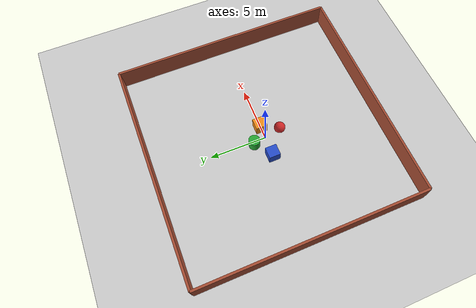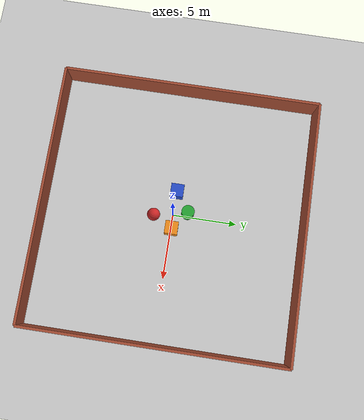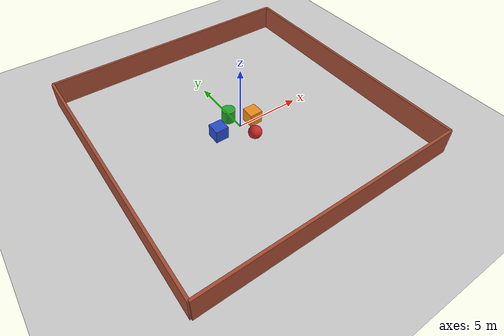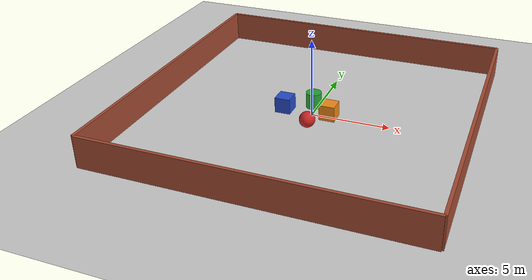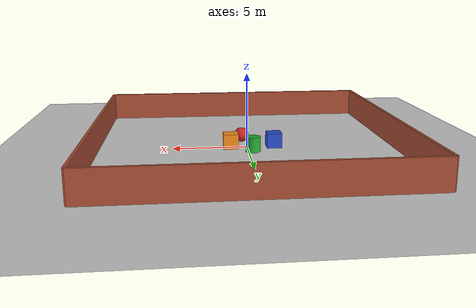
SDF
<sdf version='1.7'>
  <world name='default'>
    <!-- Lighting -->
    <light name='sun' type='directional'>
      <cast_shadows>1</cast_shadows>
      <pose>0 0 10 0 0 0</pose>
      <diffuse>1.0 1.0 1.0 1</diffuse> <!-- Brighter diffuse light -->
      <specular>0.3 0.3 0.3 1</specular>
      <attenuation>
        <range>1000</range>
        <constant>0.9</constant>
        <linear>0.01</linear>
        <quadratic>0.001</quadratic>
      </attenuation>
      <direction>-0.5 0.1 -0.9</direction>
    </light>

    <!-- Ground Plane -->
    <model name='ground_plane'>
      <static>1</static>
      <link name='link'>
        <collision name='collision'>
          <geometry>
            <plane>
              <normal>0 0 1</normal>
              <size>100 100</size>
            </plane>
          </geometry>
          <surface>
            <contact>
              <collide_bitmask>65535</collide_bitmask>
              <ode/>
            </contact>
            <friction>
              <ode>
                <mu>100</mu>
                <mu2>50</mu2>
              </ode>
              <torsional>
                <ode/>
              </torsional>
            </friction>
            <bounce/>
          </surface>
          <max_contacts>10</max_contacts>
        </collision>
        <visual name='visual'>
          <cast_shadows>0</cast_shadows>
          <geometry>
            <plane>
              <normal>0 0 1</normal>
              <size>100 100</size>
            </plane>
          </geometry>
          <material>
            <script>
              <uri>file://media/materials/scripts/gazebo.material</uri>
              <name>Gazebo/Grey</name>
            </script>
          </material>
        </visual>
        <self_collide>0</self_collide>
        <enable_wind>0</enable_wind>
        <kinematic>0</kinematic>
      </link>
    </model>

    <!-- Physics -->
    <gravity>0 0 -9.8066</gravity>
    <physics type='ode'>
      <max_step_size>0.001</max_step_size>
      <real_time_factor>1</real_time_factor>
      <real_time_update_rate>1000</real_time_update_rate>
    </physics>

    <!-- Scene -->
    <scene>
      <ambient>0.5 0.5 0.5 1</ambient> <!-- Slightly brighter ambient -->
      <background>0.7 0.7 0.7 1</background>
      <shadows>1</shadows>
    </scene>

    <!-- Original Models with Updated Materials -->
    <model name='unit_box'>
      <pose>-1.83033 0.055052 0.5 0 0 0</pose>
      <link name='link'>
        <inertial>
          <mass>1.5</mass> <!-- Increased mass for realism -->
          <inertia>
            <ixx>0.166667</ixx>
            <ixy>0</ixy>
            <ixz>0</ixz>
            <iyy>0.166667</iyy>
            <iyz>0</iyz>
            <izz>0.166667</izz>
          </inertia>
          <pose>0 0 0 0 0 0</pose>
        </inertial>
        <collision name='collision'>
          <geometry>
            <box>
              <size>1 1 1</size>
            </box>
          </geometry>
          <surface>
            <friction>
              <ode>
                <mu>0.8</mu>
                <mu2>0.8</mu2>
              </ode>
            </friction>
          </surface>
          <max_contacts>10</max_contacts>
        </collision>
        <visual name='visual'>
          <geometry>
            <box>
              <size>1 1 1</size>
            </box>
          </geometry>
          <material>
            <script>
              <uri>file://media/materials/scripts/gazebo.material</uri>
              <name>Gazebo/Blue</name> <!-- Changed to blue -->
            </script>
          </material>
        </visual>
        <self_collide>0</self_collide>
        <enable_wind>0</enable_wind>
        <kinematic>0</kinematic>
      </link>
    </model>

    <model name='unit_sphere'>
      <pose>0.233739 -1.48111 0.5 0 0 0</pose>
      <link name='link'>
        <inertial>
          <mass>1.2</mass>
          <inertia>
            <ixx>0.1</ixx>
            <ixy>0</ixy>
            <ixz>0</ixz>
            <iyy>0.1</iyy>
            <iyz>0</iyz>
            <izz>0.1</izz>
          </inertia>
          <pose>0 0 0 0 0 0</pose>
        </inertial>
        <collision name='collision'>
          <geometry>
            <sphere>
              <radius>0.5</radius>
            </sphere>
          </geometry>
          <surface>
            <friction>
              <ode>
                <mu>0.5</mu>
                <mu2>0.5</mu2>
              </ode>
            </friction>
          </surface>
          <max_contacts>10</max_contacts>
        </collision>
        <visual name='visual'>
          <geometry>
            <sphere>
              <radius>0.5</radius>
            </sphere>
          </geometry>
          <material>
            <script>
              <uri>file://media/materials/scripts/gazebo.material</uri>
              <name>Gazebo/Red</name> <!-- Changed to red -->
            </script>
          </material>
        </visual>
        <self_collide>0</self_collide>
        <enable_wind>0</enable_wind>
        <kinematic>0</kinematic>
      </link>
    </model>

    <model name='unit_cylinder'>
      <pose>-0.291539 1.12391 0.5 0 0 0</pose>
      <link name='link'>
        <inertial>
          <mass>1.3</mass>
          <inertia>
            <ixx>0.145833</ixx>
            <ixy>0</ixy>
            <ixz>0</ixz>
            <iyy>0.145833</iyy>
            <iyz>0</iyz>
            <izz>0.125</izz>
          </inertia>
          <pose>0 0 0 0 0 0</pose>
        </inertial>
        <collision name='collision'>
          <geometry>
            <cylinder>
              <radius>0.5</radius>
              <length>1</length>
            </cylinder>
          </geometry>
          <surface>
            <friction>
              <ode>
                <mu>0.6</mu>
                <mu2>0.6</mu2>
              </ode>
            </friction>
          </surface>
          <max_contacts>10</max_contacts>
        </collision>
        <visual name='visual'>
          <geometry>
            <cylinder>
              <radius>0.5</radius>
              <length>1</length>
            </cylinder>
          </geometry>
          <material>
            <script>
              <uri>file://media/materials/scripts/gazebo.material</uri>
              <name>Gazebo/Green</name> <!-- Changed to green -->
            </script>
          </material>
        </visual>
        <self_collide>0</self_collide>
        <enable_wind>0</enable_wind>
        <kinematic>0</kinematic>
      </link>
    </model>

    <model name='unit_box_0'>
      <pose>1.10728 0.046586 0.5 0 0 0</pose>
      <link name='link'>
        <inertial>
          <mass>1.5</mass>
          <inertia>
            <ixx>0.166667</ixx>
            <ixy>0</ixy>
            <ixz>0</ixz>
            <iyy>0.166667</iyy>
            <iyz>0</iyz>
            <izz>0.166667</izz>
          </inertia>
          <pose>0 0 0 0 0 0</pose>
        </inertial>
        <collision name='collision'>
          <geometry>
            <box>
              <size>1 1 1</size>
            </box>
          </geometry>
          <surface>
            <friction>
              <ode>
                <mu>0.8</mu>
                <mu2>0.8</mu2>
              </ode>
            </friction>
          </surface>
          <max_contacts>10</max_contacts>
        </collision>
        <visual name='visual'>
          <geometry>
            <box>
              <size>1 1 1</size>
            </box>
          </geometry>
          <material>
            <script>
              <uri>file://media/materials/scripts/gazebo.material</uri>
              <name>Gazebo/Orange</name> <!-- Changed to orange -->
            </script>
          </material>
        </visual>
        <self_collide>0</self_collide>
        <enable_wind>0</enable_wind>
        <kinematic>0</kinematic>
      </link>
    </model>

    <!-- Walls from gazebo_walls.world -->
    <model name='wall_north'>
      <static>1</static>
      <pose>0 10 1 0 0 0</pose>
      <link name='link'>
        <collision name='collision'>
          <geometry>
            <box>
              <size>20 0.2 2</size>
            </box>
          </geometry>
          <surface>
            <friction>
              <ode>
                <mu>0.8</mu>
                <mu2>0.8</mu2>
              </ode>
            </friction>
          </surface>
          <max_contacts>10</max_contacts>
        </collision>
        <visual name='visual'>
          <geometry>
            <box>
              <size>20 0.2 2</size>
            </box>
          </geometry>
          <material>
            <script>
              <uri>file://media/materials/scripts/gazebo.material</uri>
              <name>Gazebo/Bricks</name>
            </script>
          </material>
        </visual>
        <self_collide>0</self_collide>
        <enable_wind>0</enable_wind>
        <kinematic>0</kinematic>
      </link>
    </model>

    <model name='wall_south'>
      <static>1</static>
      <pose>0 -10 1 0 0 0</pose>
      <link name='link'>
        <collision name='collision'>
          <geometry>
            <box>
              <size>20 0.2 2</size>
            </box>
          </geometry>
          <surface>
            <friction>
              <ode>
                <mu>0.8</mu>
                <mu2>0.8</mu2>
              </ode>
            </friction>
          </surface>
          <max_contacts>10</max_contacts>
        </collision>
        <visual name='visual'>
          <geometry>
            <box>
              <size>20 0.2 2</size>
            </box>
          </geometry>
          <material>
            <script>
              <uri>file://media/materials/scripts/gazebo.material</uri>
              <name>Gazebo/Bricks</name>
            </script>
          </material>
        </visual>
        <self_collide>0</self_collide>
        <enable_wind>0</enable_wind>
        <kinematic>0</kinematic>
      </link>
    </model>

    <model name='wall_east'>
      <static>1</static>
      <pose>10 0 1 0 0 0</pose>
      <link name='link'>
        <collision name='collision'>
          <geometry>
            <box>
              <size>0.2 20 2</size>
            </box>
          </geometry>
          <surface>
            <friction>
              <ode>
                <mu>0.8</mu>
                <mu2>0.8</mu2>
              </ode>
            </friction>
          </surface>
          <max_contacts>10</max_contacts>
        </collision>
        <visual name='visual'>
          <geometry>
            <box>
              <size>0.2 20 2</size>
            </box>
          </geometry>
          <material>
            <script>
              <uri>file://media/materials/scripts/gazebo.material</uri>
              <name>Gazebo/Bricks</name>
            </script>
          </material>
        </visual>
        <self_collide>0</self_collide>
        <enable_wind>0</enable_wind>
        <kinematic>0</kinematic>
      </link>
    </model>

    <model name='wall_west'>
      <static>1</static>
      <pose>-10 0 1 0 0 0</pose>
      <link name='link'>
        <collision name='collision'>
          <geometry>
            <box>
              <size>0.2 20 2</size>
            </box>
          </geometry>
          <surface>
            <friction>
              <ode>
                <mu>0.8</mu>
                <mu2>0.8</mu2>
              </ode>
            </friction>
          </surface>
          <max_contacts>10</max_contacts>
        </collision>
        <visual name='visual'>
          <geometry>
            <box>
              <size>0.2 20 2</size>
            </box>
          </geometry>
          <material>
            <script>
              <uri>file://media/materials/scripts/gazebo.material</uri>
              <name>Gazebo/Bricks</name>
            </script>
          </material>
        </visual>
        <self_collide>0</self_collide>
        <enable_wind>0</enable_wind>
        <kinematic>0</kinematic>
      </link>
    </model>

    <!-- Camera -->
    <gui fullscreen='0'>
      <camera name='user_camera'>
        <pose>15 15 10 0 0.5 -2.4</pose> <!-- Updated from gazebo_walls.world for better view -->
        <view_controller>orbit</view_controller>
        <projection_type>perspective</projection_type>
      </camera>
    </gui>
  </world>
</sdf>
